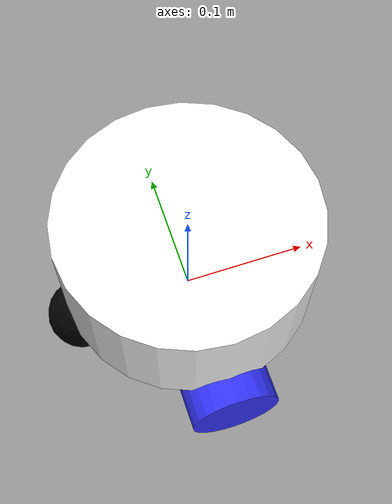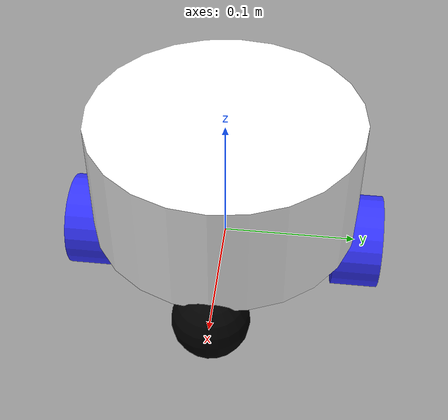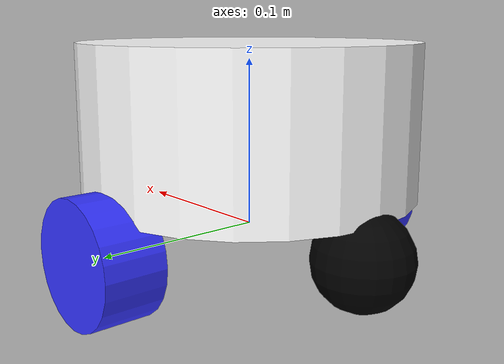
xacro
<?xml version="1.0"?>
<robot xmlns:xacro="http://www.ros.org/wiki/xacro" >

    <xacro:include filename="inertial_macros.xacro"/>

    <material name="white">
        <color rgba="1 1 1 1" />
    </material>

    <material name="orange">
        <color rgba="1 0.3 0.1 1"/>
    </material>

    <material name="blue">
        <color rgba="0.2 0.2 1 1"/>
    </material>

    <material name="black">
        <color rgba="0 0 0 1"/>
    </material>

    <material name="red">
        <color rgba="1 0 0 1"/>
    </material>

    <!-- BASE LINK -->

    <link name="base_link">

    </link>

    <joint name="base_footprint_joint" type="fixed">
      <parent link="base_link"/>
      <child link="base_footprint"/>
      <origin xyx="0 0 0" rpy="0 0 0"/>
    </joint>

    <link name="base_footprint">
    </link>

    <!-- CHASSIS LINK -->

    <joint name="chassis_joint" type="fixed">
        <parent link="base_link"/>
        <child link="chassis"/>
        <origin xyz="0 0 0"/>
    </joint>

  <link name="chassis">
      <visual>
          <origin xyz="0 0 0.065"/> <!-- half the height (90mm) is 45mm, plus 20mm above ground -->
          <geometry>
              <cylinder radius="0.1" length="0.09"/>
          </geometry>
          <material name="white"/>
      </visual>
      <collision>
          <origin xyz="0 0 0.065"/>
          <geometry>
              <cylinder radius="0.1" length="0.09"/>
          </geometry>
      </collision>
      <xacro:inertial_cylinder mass="0.5" radius="0.1" length="0.09">
          <origin xyz="0 0 0.065" rpy="0 0 0"/>
      </xacro:inertial_cylinder>
  </link>

    <gazebo reference="chassis">
      <material>Gazebo/White</material>
    </gazebo>

    <!-- LEFT WHEEL LINK -->

    <joint name="left_wheel_joint" type="continuous">
        <parent link="base_link"/>
        <child link="left_wheel"/>
        <origin xyz="0 0.1015 0" rpy="-${pi/2} 0 0" />
        <axis xyz="0 0 1"/>
    </joint>

    <link name="left_wheel">
        <visual>
            <geometry>
                <cylinder radius="0.035" length="0.035"/>
            </geometry>
            <material name="blue"/>
        </visual>
        <collision>
            <geometry>
                <sphere radius="0.035"/>
            </geometry>
        </collision>
        <xacro:inertial_cylinder mass="0.1" length="0.035" radius="0.035">
            <origin xyz="0 0 0" rpy="0 0 0"/>
        </xacro:inertial_cylinder>
    </link>

    <gazebo reference="left_wheel">
      <material>Gazebo/Blue</material>
    </gazebo>
    <!-- RIGHT WHEEL LINK -->

    <joint name="right_wheel_joint" type="continuous">
        <parent link="base_link"/>
        <child link="right_wheel"/>
        <origin xyz="0 -0.1015 0" rpy="${pi/2} 0 0" />
        <axis xyz="0 0 -1"/>
    </joint>

    <link name="right_wheel">
        <visual>
            <geometry>
                <cylinder radius="0.035" length="0.035"/>
            </geometry>
            <material name="blue"/>
        </visual>
        <collision>
            <geometry>
                <sphere radius="0.035"/>
            </geometry>
        </collision>
        <xacro:inertial_cylinder mass="0.1" length="0.035" radius="0.035">
            <origin xyz="0 0 0" rpy="0 0 0"/>
        </xacro:inertial_cylinder>
    </link>

    <gazebo reference="right_wheel">
      <material>Gazebo/Blue</material>
    </gazebo>
    <!-- CASTER WHEEL LINK -->

    <joint name="caster_wheel_joint" type="fixed">
        <parent link="chassis"/>
        <child link="caster_wheel"/>
        <origin xyz="0.09 0 0"/>
    </joint>

    <link name="caster_wheel">
        <visual>
            <geometry>
                <sphere radius="0.028"/>
            </geometry>
            <material name="black"/>
        </visual>
        <collision>
            <geometry>
                <sphere radius="0.028"/>
            </geometry>
        </collision>
        <xacro:inertial_sphere mass="0.1" radius="0.028">
            <origin xyz="0 0 0" rpy="0 0 0"/>
        </xacro:inertial_sphere>
    </link>

    <joint name="caster_wheel_joint2" type="fixed">
        <parent link="chassis"/>
        <child link="caster_wheel2"/>
        <origin xyz="-0.09 0 0"/>
    </joint>

    <link name="caster_wheel2">
        <visual>
            <geometry>
                <sphere radius="0.028"/>
            </geometry>
            <material name="black"/>
        </visual>
        <collision>
            <geometry>
                <sphere radius="0.028"/>
            </geometry>
        </collision>
        <xacro:inertial_sphere mass="0.1" radius="0.028">
            <origin xyz="0 0 0" rpy="0 0 0"/>
        </xacro:inertial_sphere>
    </link>

    <gazebo reference="caster_wheel">
      <material>Gazebo/Black</material>
      <mu1 value="0.001"/>
      <mu2 value="0.001"/>
    </gazebo>

    <gazebo reference="caster_wheel2">
      <material>Gazebo/Black</material>
      <mu1 value="0.001"/>
      <mu2 value="0.001"/>
    </gazebo>

</robot>
